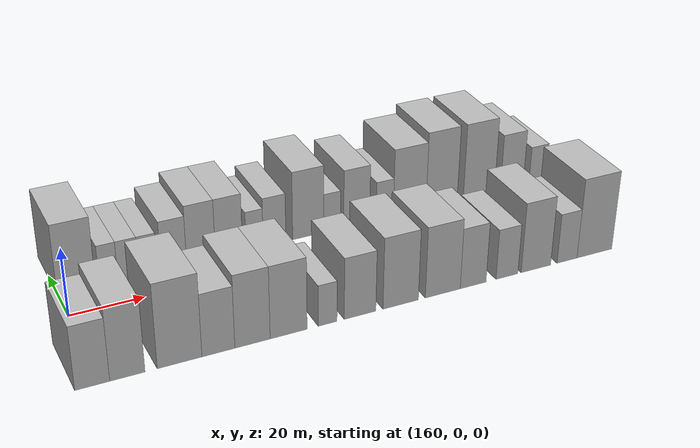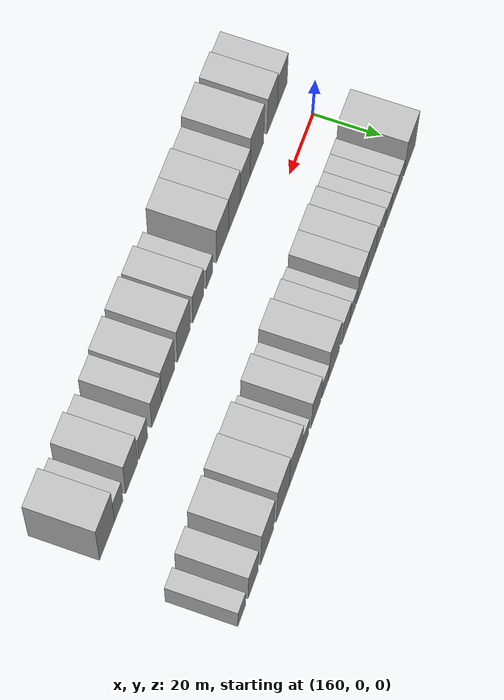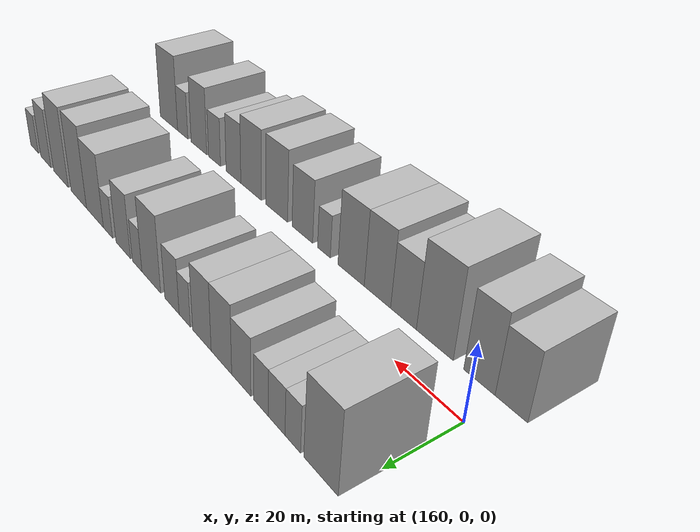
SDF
<sdf version="1.6">
 <world name="default">
  <model name="building_16">
   <static>1</static>
   <pose>164.7859 20.0000 0 0.000000 0.000000 1.570796</pose>
   <link name="link">
    <pose>0 0 10.50 0 0 0</pose>
    <collision name="collision"><geometry><box><size>20.0000 10.2070 21.0000</size></box></geometry></collision>
    <visual name="visual">
     <cast_shadows>0</cast_shadows>
     <geometry><box><size>20.0000 10.2070 21.0000</size></box></geometry>
     <material>
      <script>
       <uri>model://HANNAS_wall/materials/scripts</uri>
       <uri>model://HANNAS_wall/materials/textures</uri>
       <name>vrc/HANNAS_wall</name>
      </script>
     </material>
    </visual>
   </link>
  </model>
  <model name="building_17">
   <static>1</static>
   <pose>173.3860 20.0000 0 0.000000 0.000000 1.570796</pose>
   <link name="link">
    <pose>0 0 6.00 0 0 0</pose>
    <collision name="collision"><geometry><box><size>20.0000 4.9933 12.0000</size></box></geometry></collision>
    <visual name="visual">
     <cast_shadows>0</cast_shadows>
     <geometry><box><size>20.0000 4.9933 12.0000</size></box></geometry>
     <material>
      <script>
       <uri>model://HANNAS_wall/materials/scripts</uri>
       <uri>model://HANNAS_wall/materials/textures</uri>
       <name>vrc/HANNAS_wall</name>
      </script>
     </material>
    </visual>
   </link>
  </model>
  <model name="building_18">
   <static>1</static>
   <pose>178.7066 20.0000 0 0.000000 0.000000 1.570796</pose>
   <link name="link">
    <pose>0 0 6.00 0 0 0</pose>
    <collision name="collision"><geometry><box><size>20.0000 5.6479 12.0000</size></box></geometry></collision>
    <visual name="visual">
     <cast_shadows>0</cast_shadows>
     <geometry><box><size>20.0000 5.6479 12.0000</size></box></geometry>
     <material>
      <script>
       <uri>model://HANNAS_wall/materials/scripts</uri>
       <uri>model://HANNAS_wall/materials/textures</uri>
       <name>vrc/HANNAS_wall</name>
      </script>
     </material>
    </visual>
   </link>
  </model>
  <model name="building_19">
   <static>1</static>
   <pose>184.0761 20.0000 0 0.000000 0.000000 1.570796</pose>
   <link name="link">
    <pose>0 0 6.00 0 0 0</pose>
    <collision name="collision"><geometry><box><size>20.0000 5.0911 12.0000</size></box></geometry></collision>
    <visual name="visual">
     <cast_shadows>0</cast_shadows>
     <geometry><box><size>20.0000 5.0911 12.0000</size></box></geometry>
     <material>
      <script>
       <uri>model://HANNAS_wall/materials/scripts</uri>
       <uri>model://HANNAS_wall/materials/textures</uri>
       <name>vrc/HANNAS_wall</name>
      </script>
     </material>
    </visual>
   </link>
  </model>
  <model name="building_20">
   <static>1</static>
   <pose>191.1918 20.0000 0 0.000000 0.000000 1.570796</pose>
   <link name="link">
    <pose>0 0 7.50 0 0 0</pose>
    <collision name="collision"><geometry><box><size>20.0000 7.1403 15.0000</size></box></geometry></collision>
    <visual name="visual">
     <cast_shadows>0</cast_shadows>
     <geometry><box><size>20.0000 7.1403 15.0000</size></box></geometry>
     <material>
      <script>
       <uri>model://HANNAS_wall/materials/scripts</uri>
       <uri>model://HANNAS_wall/materials/textures</uri>
       <name>vrc/HANNAS_wall</name>
      </script>
     </material>
    </visual>
   </link>
  </model>
  <model name="building_21">
   <static>1</static>
   <pose>198.8291 20.0000 0 0.000000 0.000000 1.570796</pose>
   <link name="link">
    <pose>0 0 9.00 0 0 0</pose>
    <collision name="collision"><geometry><box><size>20.0000 8.1343 18.0000</size></box></geometry></collision>
    <visual name="visual">
     <cast_shadows>0</cast_shadows>
     <geometry><box><size>20.0000 8.1343 18.0000</size></box></geometry>
     <material>
      <script>
       <uri>model://HANNAS_wall/materials/scripts</uri>
       <uri>model://HANNAS_wall/materials/textures</uri>
       <name>vrc/HANNAS_wall</name>
      </script>
     </material>
    </visual>
   </link>
  </model>
  <model name="building_22">
   <static>1</static>
   <pose>206.7928 20.0000 0 0.000000 0.000000 1.570796</pose>
   <link name="link">
    <pose>0 0 9.00 0 0 0</pose>
    <collision name="collision"><geometry><box><size>20.0000 7.7930 18.0000</size></box></geometry></collision>
    <visual name="visual">
     <cast_shadows>0</cast_shadows>
     <geometry><box><size>20.0000 7.7930 18.0000</size></box></geometry>
     <material>
      <script>
       <uri>model://HANNAS_wall/materials/scripts</uri>
       <uri>model://HANNAS_wall/materials/textures</uri>
       <name>vrc/HANNAS_wall</name>
      </script>
     </material>
    </visual>
   </link>
  </model>
  <model name="building_23">
   <static>1</static>
   <pose>214.1908 20.0000 0 0.000000 0.000000 1.570796</pose>
   <link name="link">
    <pose>0 0 6.00 0 0 0</pose>
    <collision name="collision"><geometry><box><size>20.0000 5.0030 12.0000</size></box></geometry></collision>
    <visual name="visual">
     <cast_shadows>0</cast_shadows>
     <geometry><box><size>20.0000 5.0030 12.0000</size></box></geometry>
     <material>
      <script>
       <uri>model://HANNAS_wall/materials/scripts</uri>
       <uri>model://HANNAS_wall/materials/textures</uri>
       <name>vrc/HANNAS_wall</name>
      </script>
     </material>
    </visual>
   </link>
  </model>
  <model name="building_24">
   <static>1</static>
   <pose>220.0308 20.0000 0 0.000000 0.000000 1.570796</pose>
   <link name="link">
    <pose>0 0 7.50 0 0 0</pose>
    <collision name="collision"><geometry><box><size>20.0000 6.6769 15.0000</size></box></geometry></collision>
    <visual name="visual">
     <cast_shadows>0</cast_shadows>
     <geometry><box><size>20.0000 6.6769 15.0000</size></box></geometry>
     <material>
      <script>
       <uri>model://HANNAS_wall/materials/scripts</uri>
       <uri>model://HANNAS_wall/materials/textures</uri>
       <name>vrc/HANNAS_wall</name>
      </script>
     </material>
    </visual>
   </link>
  </model>
  <model name="building_25">
   <static>1</static>
   <pose>230.0644 20.0000 0 0.000000 0.000000 1.570796</pose>
   <link name="link">
    <pose>0 0 10.50 0 0 0</pose>
    <collision name="collision"><geometry><box><size>20.0000 9.3903 21.0000</size></box></geometry></collision>
    <visual name="visual">
     <cast_shadows>0</cast_shadows>
     <geometry><box><size>20.0000 9.3903 21.0000</size></box></geometry>
     <material>
      <script>
       <uri>model://HANNAS_wall/materials/scripts</uri>
       <uri>model://HANNAS_wall/materials/textures</uri>
       <name>vrc/HANNAS_wall</name>
      </script>
     </material>
    </visual>
   </link>
  </model>
  <model name="building_26">
   <static>1</static>
   <pose>237.2728 20.0000 0 0.000000 0.000000 1.570796</pose>
   <link name="link">
    <pose>0 0 6.00 0 0 0</pose>
    <collision name="collision"><geometry><box><size>20.0000 5.0264 12.0000</size></box></geometry></collision>
    <visual name="visual">
     <cast_shadows>0</cast_shadows>
     <geometry><box><size>20.0000 5.0264 12.0000</size></box></geometry>
     <material>
      <script>
       <uri>model://HANNAS_wall/materials/scripts</uri>
       <uri>model://HANNAS_wall/materials/textures</uri>
       <name>vrc/HANNAS_wall</name>
      </script>
     </material>
    </visual>
   </link>
  </model>
  <model name="building_27">
   <static>1</static>
   <pose>244.8036 20.0000 0 0.000000 0.000000 1.570796</pose>
   <link name="link">
    <pose>0 0 9.00 0 0 0</pose>
    <collision name="collision"><geometry><box><size>20.0000 8.0354 18.0000</size></box></geometry></collision>
    <visual name="visual">
     <cast_shadows>0</cast_shadows>
     <geometry><box><size>20.0000 8.0354 18.0000</size></box></geometry>
     <material>
      <script>
       <uri>model://HANNAS_wall/materials/scripts</uri>
       <uri>model://HANNAS_wall/materials/textures</uri>
       <name>vrc/HANNAS_wall</name>
      </script>
     </material>
    </visual>
   </link>
  </model>
  <model name="building_28">
   <static>1</static>
   <pose>253.5256 20.0000 0 0.000000 0.000000 1.570796</pose>
   <link name="link">
    <pose>0 0 6.00 0 0 0</pose>
    <collision name="collision"><geometry><box><size>20.0000 5.4085 12.0000</size></box></geometry></collision>
    <visual name="visual">
     <cast_shadows>0</cast_shadows>
     <geometry><box><size>20.0000 5.4085 12.0000</size></box></geometry>
     <material>
      <script>
       <uri>model://HANNAS_wall/materials/scripts</uri>
       <uri>model://HANNAS_wall/materials/textures</uri>
       <name>vrc/HANNAS_wall</name>
      </script>
     </material>
    </visual>
   </link>
  </model>
  <model name="building_29">
   <static>1</static>
   <pose>261.4427 20.0000 0 0.000000 0.000000 1.570796</pose>
   <link name="link">
    <pose>0 0 10.50 0 0 0</pose>
    <collision name="collision"><geometry><box><size>20.0000 10.4257 21.0000</size></box></geometry></collision>
    <visual name="visual">
     <cast_shadows>0</cast_shadows>
     <geometry><box><size>20.0000 10.4257 21.0000</size></box></geometry>
     <material>
      <script>
       <uri>model://HANNAS_wall/materials/scripts</uri>
       <uri>model://HANNAS_wall/materials/textures</uri>
       <name>vrc/HANNAS_wall</name>
      </script>
     </material>
    </visual>
   </link>
  </model>
  <model name="building_30">
   <static>1</static>
   <pose>271.7292 20.0000 0 0.000000 0.000000 1.570796</pose>
   <link name="link">
    <pose>0 0 12.00 0 0 0</pose>
    <collision name="collision"><geometry><box><size>20.0000 10.1475 24.0000</size></box></geometry></collision>
    <visual name="visual">
     <cast_shadows>0</cast_shadows>
     <geometry><box><size>20.0000 10.1475 24.0000</size></box></geometry>
     <material>
      <script>
       <uri>model://HANNAS_wall/materials/scripts</uri>
       <uri>model://HANNAS_wall/materials/textures</uri>
       <name>vrc/HANNAS_wall</name>
      </script>
     </material>
    </visual>
   </link>
  </model>
  <model name="building_31">
   <static>1</static>
   <pose>283.9838 20.0000 0 0.000000 0.000000 1.570796</pose>
   <link name="link">
    <pose>0 0 12.00 0 0 0</pose>
    <collision name="collision"><geometry><box><size>20.0000 10.3616 24.0000</size></box></geometry></collision>
    <visual name="visual">
     <cast_shadows>0</cast_shadows>
     <geometry><box><size>20.0000 10.3616 24.0000</size></box></geometry>
     <material>
      <script>
       <uri>model://HANNAS_wall/materials/scripts</uri>
       <uri>model://HANNAS_wall/materials/textures</uri>
       <name>vrc/HANNAS_wall</name>
      </script>
     </material>
    </visual>
   </link>
  </model>
  <model name="building_32">
   <static>1</static>
   <pose>295.0249 20.0000 0 0.000000 0.000000 1.570796</pose>
   <link name="link">
    <pose>0 0 9.00 0 0 0</pose>
    <collision name="collision"><geometry><box><size>20.0000 7.7207 18.0000</size></box></geometry></collision>
    <visual name="visual">
     <cast_shadows>0</cast_shadows>
     <geometry><box><size>20.0000 7.7207 18.0000</size></box></geometry>
     <material>
      <script>
       <uri>model://HANNAS_wall/materials/scripts</uri>
       <uri>model://HANNAS_wall/materials/textures</uri>
       <name>vrc/HANNAS_wall</name>
      </script>
     </material>
    </visual>
   </link>
  </model>
  <model name="building_33">
   <static>1</static>
   <pose>303.8364 20.0000 0 0.000000 0.000000 1.570796</pose>
   <link name="link">
    <pose>0 0 6.00 0 0 0</pose>
    <collision name="collision"><geometry><box><size>20.0000 5.9021 12.0000</size></box></geometry></collision>
    <visual name="visual">
     <cast_shadows>0</cast_shadows>
     <geometry><box><size>20.0000 5.9021 12.0000</size></box></geometry>
     <material>
      <script>
       <uri>model://HANNAS_wall/materials/scripts</uri>
       <uri>model://HANNAS_wall/materials/textures</uri>
       <name>vrc/HANNAS_wall</name>
      </script>
     </material>
    </visual>
   </link>
  </model>
  <model name="building_49">
   <static>1</static>
   <pose>157.6014 -20.0000 0 0.000000 0.000000 1.570796</pose>
   <link name="link">
    <pose>0 0 9.00 0 0 0</pose>
    <collision name="collision"><geometry><box><size>20.0000 8.3913 18.0000</size></box></geometry></collision>
    <visual name="visual">
     <cast_shadows>0</cast_shadows>
     <geometry><box><size>20.0000 8.3913 18.0000</size></box></geometry>
     <material>
      <script>
       <uri>model://HANNAS_wall/materials/scripts</uri>
       <uri>model://HANNAS_wall/materials/textures</uri>
       <name>vrc/HANNAS_wall</name>
      </script>
     </material>
    </visual>
   </link>
  </model>
  <model name="building_50">
   <static>1</static>
   <pose>166.0972 -20.0000 0 0.000000 0.000000 1.570796</pose>
   <link name="link">
    <pose>0 0 10.50 0 0 0</pose>
    <collision name="collision"><geometry><box><size>20.0000 8.6005 21.0000</size></box></geometry></collision>
    <visual name="visual">
     <cast_shadows>0</cast_shadows>
     <geometry><box><size>20.0000 8.6005 21.0000</size></box></geometry>
     <material>
      <script>
       <uri>model://HANNAS_wall/materials/scripts</uri>
       <uri>model://HANNAS_wall/materials/textures</uri>
       <name>vrc/HANNAS_wall</name>
      </script>
     </material>
    </visual>
   </link>
  </model>
  <model name="building_51">
   <static>1</static>
   <pose>179.0038 -20.0000 0 0.000000 0.000000 1.570796</pose>
   <link name="link">
    <pose>0 0 12.00 0 0 0</pose>
    <collision name="collision"><geometry><box><size>20.0000 11.2127 24.0000</size></box></geometry></collision>
    <visual name="visual">
     <cast_shadows>0</cast_shadows>
     <geometry><box><size>20.0000 11.2127 24.0000</size></box></geometry>
     <material>
      <script>
       <uri>model://HANNAS_wall/materials/scripts</uri>
       <uri>model://HANNAS_wall/materials/textures</uri>
       <name>vrc/HANNAS_wall</name>
      </script>
     </material>
    </visual>
   </link>
  </model>
  <model name="building_52">
   <static>1</static>
   <pose>188.8287 -20.0000 0 0.000000 0.000000 1.570796</pose>
   <link name="link">
    <pose>0 0 9.00 0 0 0</pose>
    <collision name="collision"><geometry><box><size>20.0000 8.4371 18.0000</size></box></geometry></collision>
    <visual name="visual">
     <cast_shadows>0</cast_shadows>
     <geometry><box><size>20.0000 8.4371 18.0000</size></box></geometry>
     <material>
      <script>
       <uri>model://HANNAS_wall/materials/scripts</uri>
       <uri>model://HANNAS_wall/materials/textures</uri>
       <name>vrc/HANNAS_wall</name>
      </script>
     </material>
    </visual>
   </link>
  </model>
  <model name="building_53">
   <static>1</static>
   <pose>197.6597 -20.0000 0 0.000000 0.000000 1.570796</pose>
   <link name="link">
    <pose>0 0 10.50 0 0 0</pose>
    <collision name="collision"><geometry><box><size>20.0000 9.2249 21.0000</size></box></geometry></collision>
    <visual name="visual">
     <cast_shadows>0</cast_shadows>
     <geometry><box><size>20.0000 9.2249 21.0000</size></box></geometry>
     <material>
      <script>
       <uri>model://HANNAS_wall/materials/scripts</uri>
       <uri>model://HANNAS_wall/materials/textures</uri>
       <name>vrc/HANNAS_wall</name>
      </script>
     </material>
    </visual>
   </link>
  </model>
  <model name="building_54">
   <static>1</static>
   <pose>207.1942 -20.0000 0 0.000000 0.000000 1.570796</pose>
   <link name="link">
    <pose>0 0 10.50 0 0 0</pose>
    <collision name="collision"><geometry><box><size>20.0000 9.8440 21.0000</size></box></geometry></collision>
    <visual name="visual">
     <cast_shadows>0</cast_shadows>
     <geometry><box><size>20.0000 9.8440 21.0000</size></box></geometry>
     <material>
      <script>
       <uri>model://HANNAS_wall/materials/scripts</uri>
       <uri>model://HANNAS_wall/materials/textures</uri>
       <name>vrc/HANNAS_wall</name>
      </script>
     </material>
    </visual>
   </link>
  </model>
  <model name="building_55">
   <static>1</static>
   <pose>217.6790 -20.0000 0 0.000000 0.000000 1.570796</pose>
   <link name="link">
    <pose>0 0 6.00 0 0 0</pose>
    <collision name="collision"><geometry><box><size>20.0000 5.1256 12.0000</size></box></geometry></collision>
    <visual name="visual">
     <cast_shadows>0</cast_shadows>
     <geometry><box><size>20.0000 5.1256 12.0000</size></box></geometry>
     <material>
      <script>
       <uri>model://HANNAS_wall/materials/scripts</uri>
       <uri>model://HANNAS_wall/materials/textures</uri>
       <name>vrc/HANNAS_wall</name>
      </script>
     </material>
    </visual>
   </link>
  </model>
  <model name="building_56">
   <static>1</static>
   <pose>226.6392 -20.0000 0 0.000000 0.000000 1.570796</pose>
   <link name="link">
    <pose>0 0 9.00 0 0 0</pose>
    <collision name="collision"><geometry><box><size>20.0000 8.7950 18.0000</size></box></geometry></collision>
    <visual name="visual">
     <cast_shadows>0</cast_shadows>
     <geometry><box><size>20.0000 8.7950 18.0000</size></box></geometry>
     <material>
      <script>
       <uri>model://HANNAS_wall/materials/scripts</uri>
       <uri>model://HANNAS_wall/materials/textures</uri>
       <name>vrc/HANNAS_wall</name>
      </script>
     </material>
    </visual>
   </link>
  </model>
  <model name="building_57">
   <static>1</static>
   <pose>238.0800 -20.0000 0 0.000000 0.000000 1.570796</pose>
   <link name="link">
    <pose>0 0 10.50 0 0 0</pose>
    <collision name="collision"><geometry><box><size>20.0000 10.0865 21.0000</size></box></geometry></collision>
    <visual name="visual">
     <cast_shadows>0</cast_shadows>
     <geometry><box><size>20.0000 10.0865 21.0000</size></box></geometry>
     <material>
      <script>
       <uri>model://HANNAS_wall/materials/scripts</uri>
       <uri>model://HANNAS_wall/materials/textures</uri>
       <name>vrc/HANNAS_wall</name>
      </script>
     </material>
    </visual>
   </link>
  </model>
  <model name="building_58">
   <static>1</static>
   <pose>250.2219 -20.0000 0 0.000000 0.000000 1.570796</pose>
   <link name="link">
    <pose>0 0 10.50 0 0 0</pose>
    <collision name="collision"><geometry><box><size>20.0000 10.1973 21.0000</size></box></geometry></collision>
    <visual name="visual">
     <cast_shadows>0</cast_shadows>
     <geometry><box><size>20.0000 10.1973 21.0000</size></box></geometry>
     <material>
      <script>
       <uri>model://HANNAS_wall/materials/scripts</uri>
       <uri>model://HANNAS_wall/materials/textures</uri>
       <name>vrc/HANNAS_wall</name>
      </script>
     </material>
    </visual>
   </link>
  </model>
  <model name="building_59">
   <static>1</static>
   <pose>259.1678 -20.0000 0 0.000000 0.000000 1.570796</pose>
   <link name="link">
    <pose>0 0 9.00 0 0 0</pose>
    <collision name="collision"><geometry><box><size>20.0000 7.6945 18.0000</size></box></geometry></collision>
    <visual name="visual">
     <cast_shadows>0</cast_shadows>
     <geometry><box><size>20.0000 7.6945 18.0000</size></box></geometry>
     <material>
      <script>
       <uri>model://HANNAS_wall/materials/scripts</uri>
       <uri>model://HANNAS_wall/materials/textures</uri>
       <name>vrc/HANNAS_wall</name>
      </script>
     </material>
    </visual>
   </link>
  </model>
  <model name="building_60">
   <static>1</static>
   <pose>269.3296 -20.0000 0 0.000000 0.000000 1.570796</pose>
   <link name="link">
    <pose>0 0 7.50 0 0 0</pose>
    <collision name="collision"><geometry><box><size>20.0000 6.6291 15.0000</size></box></geometry></collision>
    <visual name="visual">
     <cast_shadows>0</cast_shadows>
     <geometry><box><size>20.0000 6.6291 15.0000</size></box></geometry>
     <material>
      <script>
       <uri>model://HANNAS_wall/materials/scripts</uri>
       <uri>model://HANNAS_wall/materials/textures</uri>
       <name>vrc/HANNAS_wall</name>
      </script>
     </material>
    </visual>
   </link>
  </model>
  <model name="building_61">
   <static>1</static>
   <pose>278.2089 -20.0000 0 0.000000 0.000000 1.570796</pose>
   <link name="link">
    <pose>0 0 10.50 0 0 0</pose>
    <collision name="collision"><geometry><box><size>20.0000 9.1297 21.0000</size></box></geometry></collision>
    <visual name="visual">
     <cast_shadows>0</cast_shadows>
     <geometry><box><size>20.0000 9.1297 21.0000</size></box></geometry>
     <material>
      <script>
       <uri>model://HANNAS_wall/materials/scripts</uri>
       <uri>model://HANNAS_wall/materials/textures</uri>
       <name>vrc/HANNAS_wall</name>
      </script>
     </material>
    </visual>
   </link>
  </model>
  <model name="building_62">
   <static>1</static>
   <pose>287.9173 -20.0000 0 0.000000 0.000000 1.570796</pose>
   <link name="link">
    <pose>0 0 7.50 0 0 0</pose>
    <collision name="collision"><geometry><box><size>20.0000 6.2871 15.0000</size></box></geometry></collision>
    <visual name="visual">
     <cast_shadows>0</cast_shadows>
     <geometry><box><size>20.0000 6.2871 15.0000</size></box></geometry>
     <material>
      <script>
       <uri>model://HANNAS_wall/materials/scripts</uri>
       <uri>model://HANNAS_wall/materials/textures</uri>
       <name>vrc/HANNAS_wall</name>
      </script>
     </material>
    </visual>
   </link>
  </model>
  <model name="building_63">
   <static>1</static>
   <pose>296.6266 -20.0000 0 0.000000 0.000000 1.570796</pose>
   <link name="link">
    <pose>0 0 12.00 0 0 0</pose>
    <collision name="collision"><geometry><box><size>20.0000 11.1316 24.0000</size></box></geometry></collision>
    <visual name="visual">
     <cast_shadows>0</cast_shadows>
     <geometry><box><size>20.0000 11.1316 24.0000</size></box></geometry>
     <material>
      <script>
       <uri>model://HANNAS_wall/materials/scripts</uri>
       <uri>model://HANNAS_wall/materials/textures</uri>
       <name>vrc/HANNAS_wall</name>
      </script>
     </material>
    </visual>
   </link>
  </model>
 </world>
</sdf>
